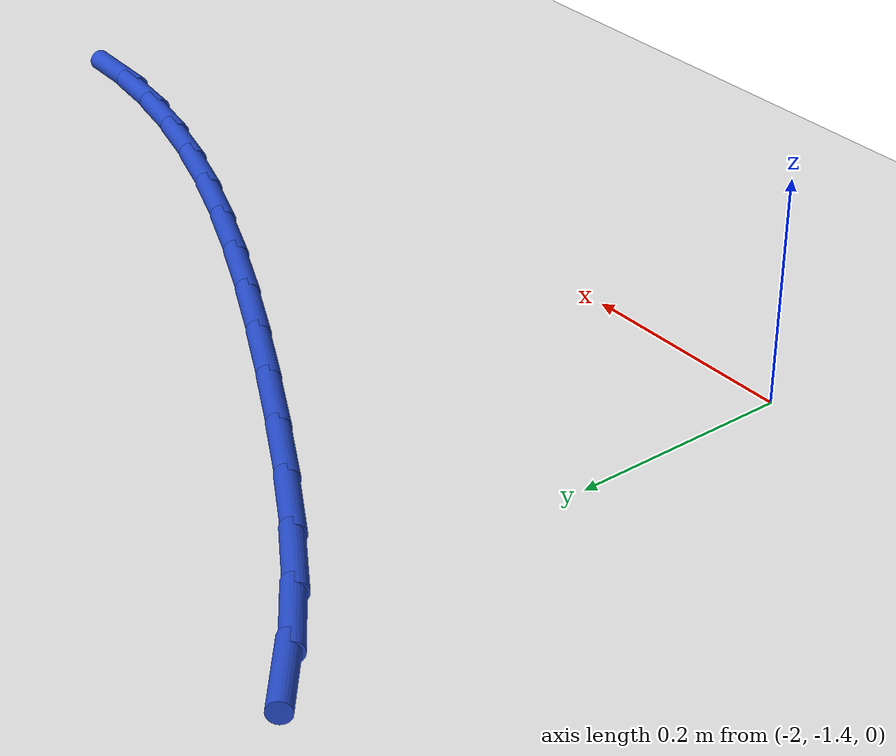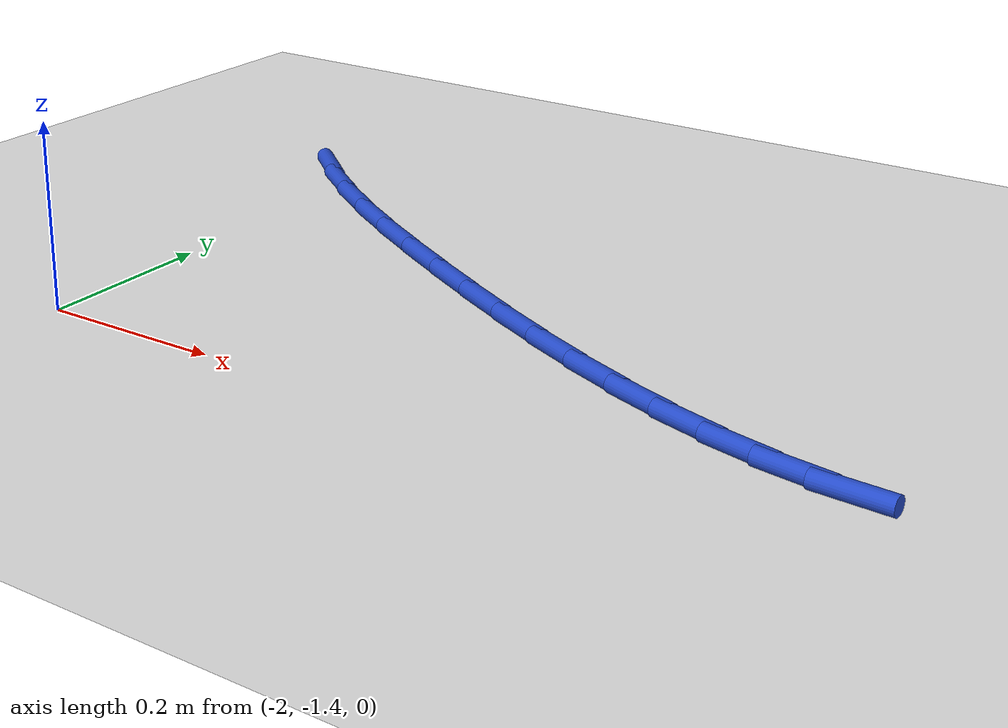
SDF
<sdf version="1.6">
 <world name="default">
  <model name="ground_plane">
   <static>1</static>
   <link name="link">
    <collision name="collision">
     <geometry><plane><normal>0 0 1</normal><size>100 100</size></plane></geometry>
     <surface><friction><ode><mu>100</mu><mu2>50</mu2></ode></friction></surface>
    </collision>
    <visual name="visual">
     <cast_shadows>0</cast_shadows>
     <geometry><plane><normal>0 0 1</normal><size>100 100</size></plane></geometry>
     <material>
      <script><uri>file://media/materials/scripts/gazebo.material</uri><name>Gazebo/WhiteGlow</name></script>
     </material>
    </visual>
   </link>
  </model>
  <model name="line">
   <link name="link_83">
    <pose>-2.0485779536313777 -0.8855069143244867 0.01 0 1.57 -0.7189867523443715</pose>
    <collision name="collision">
     <geometry><cylinder><radius>0.01</radius><length>0.08</length></cylinder></geometry>
    </collision>
    <visual name="visual">
     <material>
      <script><name>Gazebo/Blue</name><uri>file://media/materials/scripts/gazebo.material</uri></script>
     </material>
     <geometry><cylinder><radius>0.01</radius><length>0.08</length></cylinder></geometry>
    </visual>
   </link>
   <link name="link_84">
    <pose>-2.000676007760979 -0.9274343764349976 0.01 0 1.57 -0.6457841733095309</pose>
    <collision name="collision">
     <geometry><cylinder><radius>0.01</radius><length>0.08</length></cylinder></geometry>
    </collision>
    <visual name="visual">
     <material>
      <script><name>Gazebo/Blue</name><uri>file://media/materials/scripts/gazebo.material</uri></script>
     </material>
     <geometry><cylinder><radius>0.01</radius><length>0.08</length></cylinder></geometry>
    </visual>
   </link>
   <link name="link_85">
    <pose>-1.9470844483066077 -0.9678195508152263 0.01 0 1.57 -0.5920087716035267</pose>
    <collision name="collision">
     <geometry><cylinder><radius>0.01</radius><length>0.08</length></cylinder></geometry>
    </collision>
    <visual name="visual">
     <material>
      <script><name>Gazebo/Blue</name><uri>file://media/materials/scripts/gazebo.material</uri></script>
     </material>
     <geometry><cylinder><radius>0.01</radius><length>0.08</length></cylinder></geometry>
    </visual>
   </link>
   <link name="link_86">
    <pose>-1.8891920262429422 -1.0067504031179015 0.01 0 1.57 -0.5533985376638503</pose>
    <collision name="collision">
     <geometry><cylinder><radius>0.01</radius><length>0.08</length></cylinder></geometry>
    </collision>
    <visual name="visual">
     <material>
      <script><name>Gazebo/Blue</name><uri>file://media/materials/scripts/gazebo.material</uri></script>
     </material>
     <geometry><cylinder><radius>0.01</radius><length>0.08</length></cylinder></geometry>
    </visual>
   </link>
   <link name="link_87">
    <pose>-1.8283874925446626 -1.044314898995751 0.01 0 1.57 -0.5272141162666244</pose>
    <collision name="collision">
     <geometry><cylinder><radius>0.01</radius><length>0.08</length></cylinder></geometry>
    </collision>
    <visual name="visual">
     <material>
      <script><name>Gazebo/Blue</name><uri>file://media/materials/scripts/gazebo.material</uri></script>
     </material>
     <geometry><cylinder><radius>0.01</radius><length>0.08</length></cylinder></geometry>
    </visual>
   </link>
   <link name="link_88">
    <pose>-1.7660595981864473 -1.0806010041015037 0.01 0 1.57 -0.5112192796092666</pose>
    <collision name="collision">
     <geometry><cylinder><radius>0.01</radius><length>0.08</length></cylinder></geometry>
    </collision>
    <visual name="visual">
     <material>
      <script><name>Gazebo/Blue</name><uri>file://media/materials/scripts/gazebo.material</uri></script>
     </material>
     <geometry><cylinder><radius>0.01</radius><length>0.08</length></cylinder></geometry>
    </visual>
   </link>
   <link name="link_89">
    <pose>-1.703536527395588 -1.1156739821179587 0.01 0 1.57 -0.4963796219121484</pose>
    <collision name="collision">
     <geometry><cylinder><radius>0.01</radius><length>0.08</length></cylinder></geometry>
    </collision>
    <visual name="visual">
     <material>
      <script><name>Gazebo/Blue</name><uri>file://media/materials/scripts/gazebo.material</uri></script>
     </material>
     <geometry><cylinder><radius>0.01</radius><length>0.08</length></cylinder></geometry>
    </visual>
   </link>
   <link name="link_90">
    <pose>-1.6414092737117183 -1.1493227787556635 0.01 0 1.57 -0.4767110902026823</pose>
    <collision name="collision">
     <geometry><cylinder><radius>0.01</radius><length>0.08</length></cylinder></geometry>
    </collision>
    <visual name="visual">
     <material>
      <script><name>Gazebo/Blue</name><uri>file://media/materials/scripts/gazebo.material</uri></script>
     </material>
     <geometry><cylinder><radius>0.01</radius><length>0.08</length></cylinder></geometry>
    </visual>
   </link>
   <link name="link_91">
    <pose>-1.5797770185875581 -1.1811519959442984 0.01 0 1.57 -0.45161649988423225</pose>
    <collision name="collision">
     <geometry><cylinder><radius>0.01</radius><length>0.08</length></cylinder></geometry>
    </collision>
    <visual name="visual">
     <material>
      <script><name>Gazebo/Blue</name><uri>file://media/materials/scripts/gazebo.material</uri></script>
     </material>
     <geometry><cylinder><radius>0.01</radius><length>0.08</length></cylinder></geometry>
    </visual>
   </link>
   <link name="link_92">
    <pose>-1.518729986802663 -1.2107628784227777 0.01 0 1.57 -0.4204625485159834</pose>
    <collision name="collision">
     <geometry><cylinder><radius>0.01</radius><length>0.08</length></cylinder></geometry>
    </collision>
    <visual name="visual">
     <material>
      <script><name>Gazebo/Blue</name><uri>file://media/materials/scripts/gazebo.material</uri></script>
     </material>
     <geometry><cylinder><radius>0.01</radius><length>0.08</length></cylinder></geometry>
    </visual>
   </link>
   <link name="link_93">
    <pose>-1.4583584031365817 -1.237756670930017 0.01 0 1.57 -0.38246574845230413</pose>
    <collision name="collision">
     <geometry><cylinder><radius>0.01</radius><length>0.08</length></cylinder></geometry>
    </collision>
    <visual name="visual">
     <material>
      <script><name>Gazebo/Blue</name><uri>file://media/materials/scripts/gazebo.material</uri></script>
     </material>
     <geometry><cylinder><radius>0.01</radius><length>0.08</length></cylinder></geometry>
    </visual>
   </link>
   <link name="link_94">
    <pose>-1.3987524923688672 -1.2617346182049316 0.01 0 1.57 -0.3366875902135997</pose>
    <collision name="collision">
     <geometry><cylinder><radius>0.01</radius><length>0.08</length></cylinder></geometry>
    </collision>
    <visual name="visual">
     <material>
      <script><name>Gazebo/Blue</name><uri>file://media/materials/scripts/gazebo.material</uri></script>
     </material>
     <geometry><cylinder><radius>0.01</radius><length>0.08</length></cylinder></geometry>
    </visual>
   </link>
   <link name="link_95">
    <pose>-1.3400024792790721 -1.2822979649864354 0.01 0 1.57 -0.2820477672549663</pose>
    <collision name="collision">
     <geometry><cylinder><radius>0.01</radius><length>0.08</length></cylinder></geometry>
    </collision>
    <visual name="visual">
     <material>
      <script><name>Gazebo/Blue</name><uri>file://media/materials/scripts/gazebo.material</uri></script>
     </material>
     <geometry><cylinder><radius>0.01</radius><length>0.08</length></cylinder></geometry>
    </visual>
   </link>
   <link name="link_96">
    <pose>-1.2821985886467488 -1.2990479560134456 0.01 0 1.57 -0.2173738199892979</pose>
    <collision name="collision">
     <geometry><cylinder><radius>0.01</radius><length>0.08</length></cylinder></geometry>
    </collision>
    <visual name="visual">
     <material>
      <script><name>Gazebo/Blue</name><uri>file://media/materials/scripts/gazebo.material</uri></script>
     </material>
     <geometry><cylinder><radius>0.01</radius><length>0.08</length></cylinder></geometry>
    </visual>
   </link>
   <link name="link_97">
    <pose>-1.2254310452514483 -1.3115858360248753 0.01 0 1.57 -0.14151489569861342</pose>
    <collision name="collision">
     <geometry><cylinder><radius>0.01</radius><length>0.08</length></cylinder></geometry>
    </collision>
    <visual name="visual">
     <material>
      <script><name>Gazebo/Blue</name><uri>file://media/materials/scripts/gazebo.material</uri></script>
     </material>
     <geometry><cylinder><radius>0.01</radius><length>0.08</length></cylinder></geometry>
    </visual>
   </link>
   <link name="link_98">
    <pose>-1.1697900738727232 -1.3195128497596407 0.01 0 1.57 -0.053553456448019746</pose>
    <collision name="collision">
     <geometry><cylinder><radius>0.01</radius><length>0.08</length></cylinder></geometry>
    </collision>
    <visual name="visual">
     <material>
      <script><name>Gazebo/Blue</name><uri>file://media/materials/scripts/gazebo.material</uri></script>
     </material>
     <geometry><cylinder><radius>0.01</radius><length>0.08</length></cylinder></geometry>
    </visual>
   </link>
  </model>
 </world>
</sdf>
